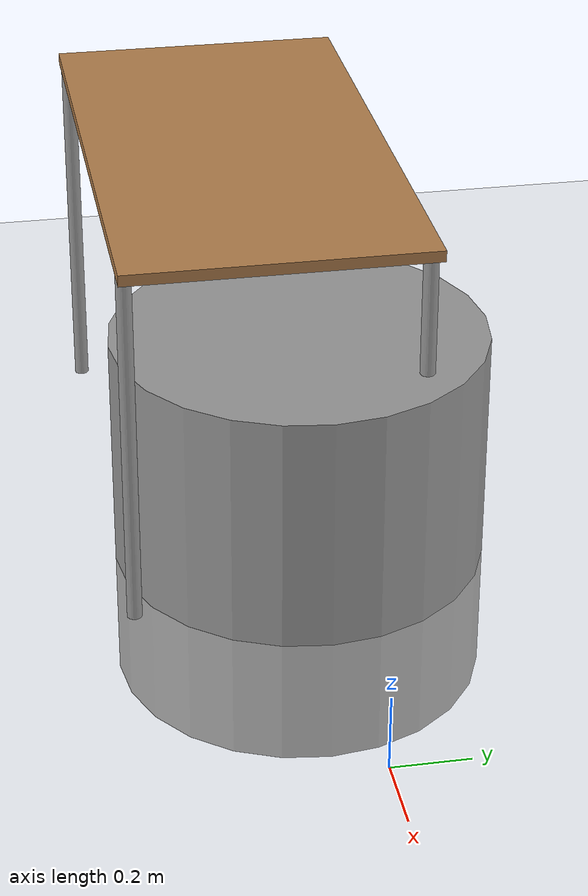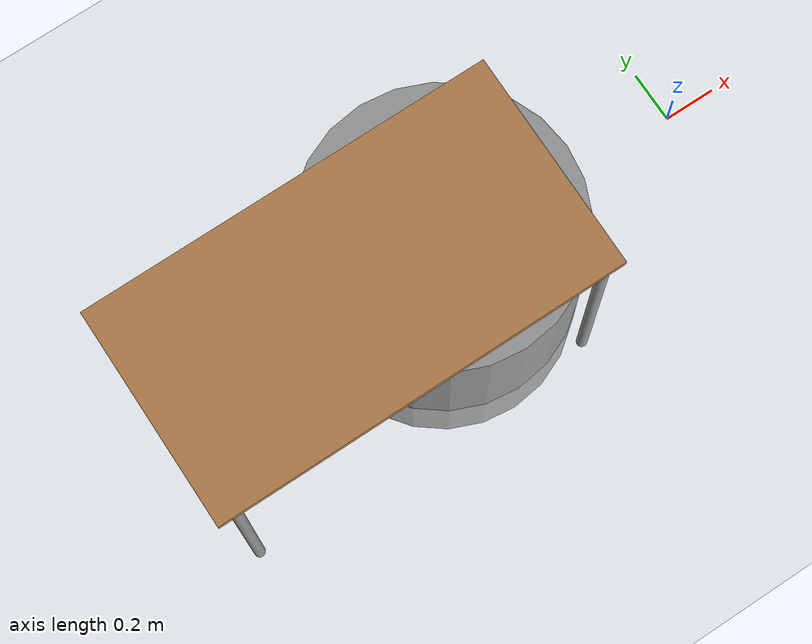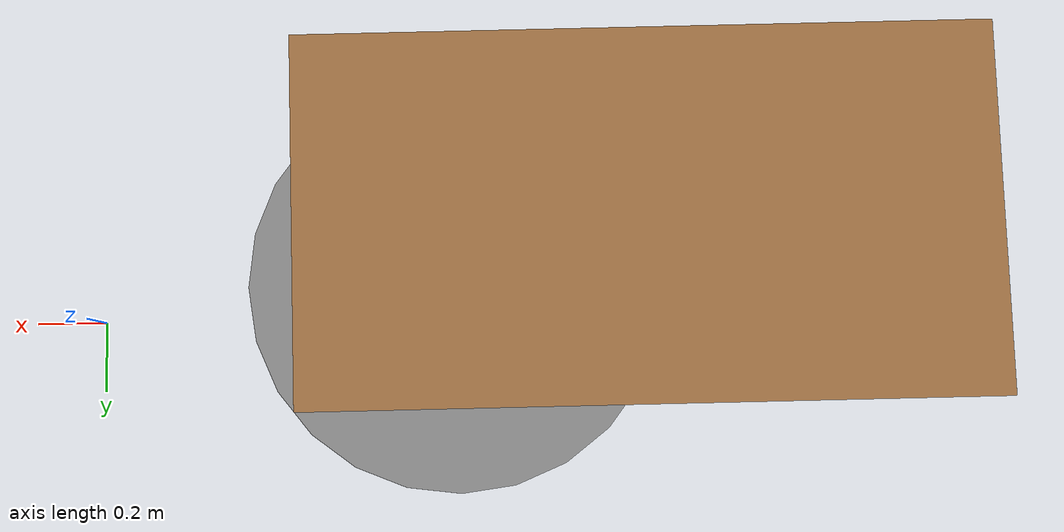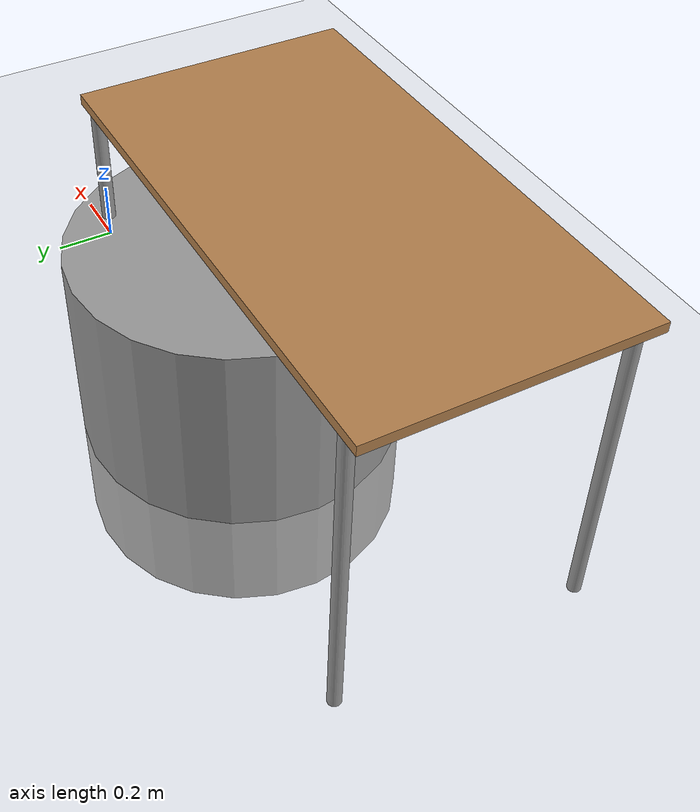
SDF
<sdf version="1.7">
 <world name="default">
  <light name="sun" type="directional">
   <pose>0 0 10 0 -0 0</pose>
   <diffuse>0.8 0.8 0.8 1</diffuse>
   <specular>0.2 0.2 0.2 1</specular>
   <attenuation>
    <range>1000</range>
    <constant>0.9</constant>
    <linear>0.01</linear>
    <quadratic>0.001</quadratic>
   </attenuation>
   <direction>-0.5 0.1 -0.9</direction>
   <spot><inner_angle>0</inner_angle><outer_angle>0</outer_angle><falloff>0</falloff></spot>
  </light>
  <model name="ground_plane">
   <static>1</static>
   <link name="link">
    <collision name="collision">
     <geometry><plane><normal>0 0 1</normal><size>100 100</size></plane></geometry>
     <surface><friction><ode><mu>100</mu><mu2>50</mu2></ode></friction></surface>
    </collision>
    <visual name="visual">
     <cast_shadows>0</cast_shadows>
     <geometry><plane><normal>0 0 1</normal><size>100 100</size></plane></geometry>
     <material>
      <script><uri>file://media/materials/scripts/gazebo.material</uri><name>Gazebo/Grey</name></script>
     </material>
    </visual>
   </link>
  </model>
  <gravity>0 0 -9.8</gravity>
  <magnetic_field>6e-06 2.3e-05 -4.2e-05</magnetic_field>
  <atmosphere type="adiabatic"/>
  <physics type="ode">
   <max_step_size>0.001</max_step_size>
   <real_time_factor>1</real_time_factor>
   <real_time_update_rate>1000</real_time_update_rate>
  </physics>
  <scene><ambient>0.4 0.4 0.4 1</ambient><background>0.7 0.7 0.7 1</background><shadows>1</shadows></scene>
  <audio><device>default</device></audio>
  <spherical_coordinates>
   <surface_model>EARTH_WGS84</surface_model>
   <latitude_deg>0</latitude_deg>
   <longitude_deg>0</longitude_deg>
   <elevation>0</elevation>
   <heading_deg>0</heading_deg>
  </spherical_coordinates>
  <model name="Table">
   <static>1</static>
   <link name="link">
    <collision name="surface">
     <pose>0 0 1 0 -0 0</pose>
     <geometry><box><size>1.5 0.8 0.03</size></box></geometry>
     <surface><friction><ode><mu>0.6</mu><mu2>0.6</mu2></ode></friction></surface>
    </collision>
    <visual name="visual1">
     <pose>0 0 1 0 -0 0</pose>
     <geometry><box><size>1.5 0.8 0.03</size></box></geometry>
     <material>
      <diffuse>1 1 1 1</diffuse>
      <script><uri>file://media/materials/scripts/gazebo.material</uri><name>Gazebo/Wood</name></script>
      <pbr>
       <metal>
        <albedo_map>https://fuel.ignitionrobotics.org/1.0/openrobotics/models/table/4/files/Table_Diffuse.jpg</albedo_map>
       </metal>
      </pbr>
     </material>
    </visual>
    <collision name="front_left_leg">
     <pose>0.68 0.38 0.5 0 -0 0</pose>
     <geometry><cylinder><radius>0.02</radius><length>1</length></cylinder></geometry>
    </collision>
    <visual name="front_left_leg">
     <pose>0.68 0.38 0.5 0 -0 0</pose>
     <geometry><cylinder><radius>0.02</radius><length>1</length></cylinder></geometry>
     <material>
      <diffuse>0.5 0.5 0.5 1</diffuse>
      <script><uri>file://media/materials/scripts/gazebo.material</uri><name>Gazebo/Grey</name></script>
     </material>
    </visual>
    <collision name="front_right_leg">
     <pose>0.68 -0.38 0.5 0 -0 0</pose>
     <geometry><cylinder><radius>0.02</radius><length>1</length></cylinder></geometry>
    </collision>
    <visual name="front_right_leg">
     <pose>0.68 -0.38 0.5 0 -0 0</pose>
     <geometry><cylinder><radius>0.02</radius><length>1</length></cylinder></geometry>
     <material>
      <diffuse>0.5 0.5 0.5 1</diffuse>
      <script><uri>file://media/materials/scripts/gazebo.material</uri><name>Gazebo/Grey</name></script>
     </material>
    </visual>
    <collision name="back_right_leg">
     <pose>-0.68 -0.38 0.5 0 -0 0</pose>
     <geometry><cylinder><radius>0.02</radius><length>1</length></cylinder></geometry>
    </collision>
    <visual name="back_right_leg">
     <pose>-0.68 -0.38 0.5 0 -0 0</pose>
     <geometry><cylinder><radius>0.02</radius><length>1</length></cylinder></geometry>
     <material>
      <diffuse>0.5 0.5 0.5 1</diffuse>
      <script><uri>file://media/materials/scripts/gazebo.material</uri><name>Gazebo/Grey</name></script>
     </material>
    </visual>
    <collision name="back_left_leg">
     <pose>-0.68 0.38 0.5 0 -0 0</pose>
     <geometry><cylinder><radius>0.02</radius><length>1</length></cylinder></geometry>
    </collision>
    <visual name="back_left_leg">
     <pose>-0.68 0.38 0.5 0 -0 0</pose>
     <geometry><cylinder><radius>0.02</radius><length>1</length></cylinder></geometry>
     <material>
      <diffuse>0.5 0.5 0.5 1</diffuse>
      <script><uri>file://media/materials/scripts/gazebo.material</uri><name>Gazebo/Grey</name></script>
     </material>
    </visual>
   </link>
   <pose>-1.41491 -0.136297 0 0 -0 0</pose>
  </model>
  <model name="unit_cylinder">
   <pose>-1.01708 -0.033097 0.14378 0 -0 0</pose>
   <link name="link">
    <inertial>
     <mass>1</mass>
     <inertia><ixx>0.145833</ixx><ixy>0</ixy><ixz>0</ixz><iyy>0.145833</iyy><iyz>0</iyz><izz>0.125</izz></inertia>
    </inertial>
    <collision name="collision">
     <geometry><cylinder><radius>0.500003</radius><length>1</length></cylinder></geometry>
    </collision>
    <visual name="visual">
     <geometry><cylinder><radius>0.500003</radius><length>1</length></cylinder></geometry>
     <material>
      <script><name>Gazebo/Grey</name><uri>file://media/materials/scripts/gazebo.material</uri></script>
     </material>
    </visual>
   </link>
  </model>
 </world>
</sdf>
